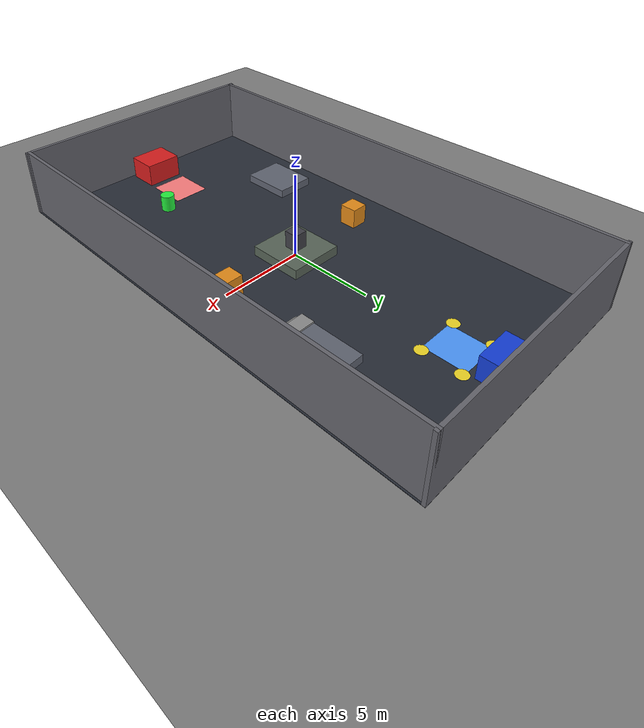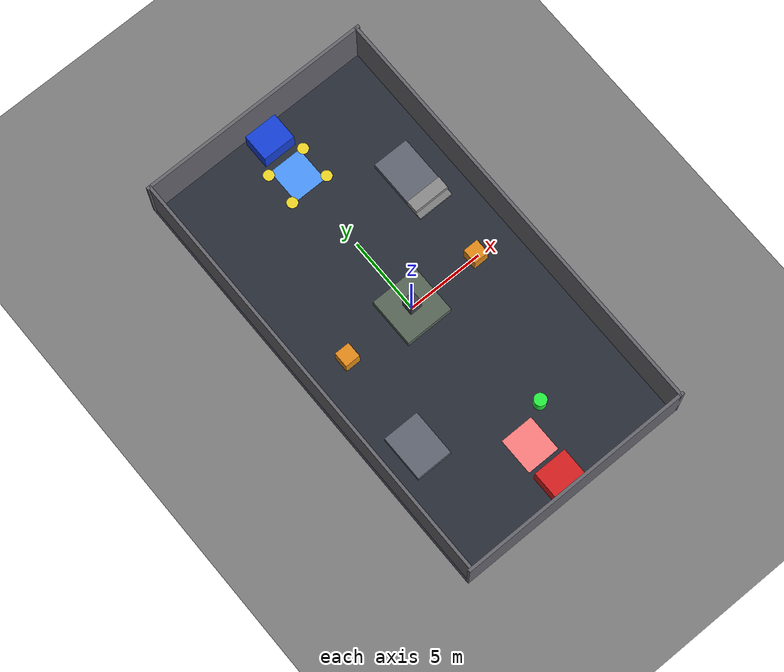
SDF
<?xml version="1.0" encoding="UTF-8"?>
<sdf version="1.9">
  <world name="rm2025_field">
    <physics type="ode">
      <max_step_size>0.004</max_step_size>
      <real_time_factor>1.0</real_time_factor>
      <real_time_update_rate>250</real_time_update_rate>
    </physics>
    <plugin name="gz::sim::systems::Physics" filename="gz-sim-physics-system"/>
    <plugin name="gz::sim::systems::UserCommands" filename="gz-sim-user-commands-system"/>
    <plugin name="gz::sim::systems::SceneBroadcaster" filename="gz-sim-scene-broadcaster-system"/>
    <plugin name="gz::sim::systems::Contact" filename="gz-sim-contact-system"/>
    <plugin name="gz::sim::systems::Imu" filename="gz-sim-imu-system"/>
    <plugin name="gz::sim::systems::AirPressure" filename="gz-sim-air-pressure-system"/>
    <plugin name="gz::sim::systems::ApplyLinkWrench" filename="gz-sim-apply-link-wrench-system"/>
    <plugin name="gz::sim::systems::NavSat" filename="gz-sim-navsat-system"/>
    <plugin name="gz::sim::systems::Sensors" filename="gz-sim-sensors-system">
      <render_engine>ogre2</render_engine>
    </plugin>
    <gui fullscreen="false">
      <plugin filename="MinimalScene" name="3D View">
        <gz-gui>
          <title>3D View</title>
          <property type="bool" key="showTitleBar">false</property>
          <property type="string" key="state">docked</property>
        </gz-gui>
        <engine>ogre2</engine>
        <scene>scene</scene>
        <ambient_light>0.4 0.4 0.4</ambient_light>
        <background_color>0.8 0.8 0.8</background_color>
        <!-- 默认相机：从蓝方基地上空俯瞰全场 -->
        <camera_pose>3 22 14 0 0.55 -1.5707</camera_pose>
        <camera_clip>
          <near>0.25</near>
          <far>25000</far>
        </camera_clip>
      </plugin>
      <plugin filename="EntityContextMenuPlugin" name="Entity context menu">
        <gz-gui>
          <property key="state" type="string">floating</property>
          <property key="width" type="double">5</property>
          <property key="height" type="double">5</property>
          <property key="showTitleBar" type="bool">false</property>
        </gz-gui>
      </plugin>
      <plugin filename="GzSceneManager" name="Scene Manager">
        <gz-gui>
          <property key="resizable" type="bool">false</property>
          <property key="width" type="double">5</property>
          <property key="height" type="double">5</property>
          <property key="state" type="string">floating</property>
          <property key="showTitleBar" type="bool">false</property>
        </gz-gui>
      </plugin>
      <plugin filename="InteractiveViewControl" name="Interactive view control">
        <gz-gui>
          <property key="resizable" type="bool">false</property>
          <property key="width" type="double">5</property>
          <property key="height" type="double">5</property>
          <property key="state" type="string">floating</property>
          <property key="showTitleBar" type="bool">false</property>
        </gz-gui>
      </plugin>
      <plugin filename="CameraTracking" name="Camera Tracking">
        <gz-gui>
          <property key="resizable" type="bool">false</property>
          <property key="width" type="double">5</property>
          <property key="height" type="double">5</property>
          <property key="state" type="string">floating</property>
          <property key="showTitleBar" type="bool">false</property>
        </gz-gui>
      </plugin>
      <plugin filename="MarkerManager" name="Marker manager">
        <gz-gui>
          <property key="resizable" type="bool">false</property>
          <property key="width" type="double">5</property>
          <property key="height" type="double">5</property>
          <property key="state" type="string">floating</property>
          <property key="showTitleBar" type="bool">false</property>
        </gz-gui>
      </plugin>
      <plugin filename="SelectEntities" name="Select Entities">
        <anchors target="Select entities">
          <line own="right" target="right"/>
          <line own="top" target="top"/>
        </anchors>
        <property key="resizable" type="bool">false</property>
        <property key="width" type="double">5</property>
        <property key="height" type="double">5</property>
        <property key="state" type="string">floating</property>
        <property key="showTitleBar" type="bool">false</property>
      </plugin>
      <plugin filename="VisualizationCapabilities" name="Visualization Capabilities">
        <gz-gui>
          <property key="resizable" type="bool">false</property>
          <property key="width" type="double">5</property>
          <property key="height" type="double">5</property>
          <property key="state" type="string">floating</property>
          <property key="showTitleBar" type="bool">false</property>
        </gz-gui>
      </plugin>
      <plugin filename="Spawn" name="Spawn Entities">
        <gz-gui>
          <anchors target="Select entities">
            <line own="right" target="right"/>
            <line own="top" target="top"/>
          </anchors>
          <property key="resizable" type="bool">false</property>
          <property key="width" type="double">5</property>
          <property key="height" type="double">5</property>
          <property key="state" type="string">floating</property>
          <property key="showTitleBar" type="bool">false</property>
        </gz-gui>
      </plugin>
      <plugin name="World control" filename="WorldControl">
        <gz-gui>
          <title>World control</title>
          <property type="bool" key="showTitleBar">0</property>
          <property type="bool" key="resizable">0</property>
          <property type="double" key="height">72</property>
          <property type="double" key="width">121</property>
          <property type="double" key="z">1</property>
          <property type="string" key="state">floating</property>
          <anchors target="3D View">
            <line own="left" target="left"/>
            <line own="bottom" target="bottom"/>
          </anchors>
        </gz-gui>
        <play_pause>1</play_pause>
        <step>1</step>
        <start_paused>1</start_paused>
      </plugin>
      <plugin name="World stats" filename="WorldStats">
        <gz-gui>
          <title>World stats</title>
          <property type="bool" key="showTitleBar">0</property>
          <property type="bool" key="resizable">0</property>
          <property type="double" key="height">110</property>
          <property type="double" key="width">290</property>
          <property type="double" key="z">1</property>
          <property type="string" key="state">floating</property>
          <anchors target="3D View">
            <line own="right" target="right"/>
            <line own="bottom" target="bottom"/>
          </anchors>
        </gz-gui>
        <sim_time>1</sim_time>
        <real_time>1</real_time>
        <real_time_factor>1</real_time_factor>
        <iterations>1</iterations>
      </plugin>
      <plugin name="Entity tree" filename="EntityTree"/>
    </gui>
    <gravity>0 0 -9.8</gravity>
    <magnetic_field>6e-06 2.3e-05 -4.2e-05</magnetic_field>
    <atmosphere type="adiabatic"/>
    <scene>
      <grid>false</grid>
      <ambient>0.4 0.4 0.4 1</ambient>
      <background>0.7 0.7 0.7 1</background>
      <shadows>true</shadows>
    </scene>
    <light name="sunUTC" type="directional">
      <pose>0 0 500 0 -0 0</pose>
      <cast_shadows>true</cast_shadows>
      <intensity>1</intensity>
      <direction>0.001 0.625 -0.78</direction>
      <diffuse>0.904 0.904 0.904 1</diffuse>
      <specular>0.271 0.271 0.271 1</specular>
      <attenuation>
        <range>2000</range>
        <linear>0</linear>
        <constant>1</constant>
        <quadratic>0</quadratic>
      </attenuation>
      <spot>
        <inner_angle>0</inner_angle>
        <outer_angle>0</outer_angle>
        <falloff>0</falloff>
      </spot>
    </light>
    <spherical_coordinates>
      <surface_model>EARTH_WGS84</surface_model>
      <world_frame_orientation>ENU</world_frame_orientation>
      <latitude_deg>47.397971057728974</latitude_deg>
      <longitude_deg> 8.546163739800146</longitude_deg>
      <elevation>0</elevation>
    </spherical_coordinates>

    <!-- ================= 地面 ================= -->
    <model name="ground_plane">
      <static>true</static>
      <link name="link">
        <collision name="collision">
          <geometry>
            <plane>
              <normal>0 0 1</normal>
              <size>1 1</size>
            </plane>
          </geometry>
          <surface>
            <friction>
              <ode/>
            </friction>
            <bounce/>
            <contact/>
          </surface>
        </collision>
        <visual name="visual">
          <geometry>
            <plane>
              <normal>0 0 1</normal>
              <size>100 100</size>
            </plane>
          </geometry>
          <material>
            <ambient>0.5 0.5 0.5 1</ambient>
            <diffuse>0.5 0.5 0.5 1</diffuse>
            <specular>0.5 0.5 0.5 1</specular>
          </material>
        </visual>
        <pose>0 0 0 0 -0 0</pose>
        <inertial>
          <pose>0 0 0 0 -0 0</pose>
          <mass>1</mass>
          <inertia>
            <ixx>1</ixx><ixy>0</ixy><ixz>0</ixz>
            <iyy>1</iyy><iyz>0</iyz><izz>1</izz>
          </inertia>
        </inertial>
        <enable_wind>false</enable_wind>
      </link>
      <pose>0 0 0 0 -0 0</pose>
      <self_collide>false</self_collide>
    </model>

    <!-- 赛场地板 15.6 x 28.6 m（深蓝灰） -->
    <model name="field_floor">
      <static>true</static>
      <pose>0 0 0.01 0 0 0</pose>
      <link name="link">
        <collision name="collision">
          <geometry><box><size>15.6 28.6 0.02</size></box></geometry>
        </collision>
        <visual name="visual">
          <geometry><box><size>15.6 28.6 0.02</size></box></geometry>
          <material>
            <ambient>0.13 0.15 0.19 1</ambient>
            <diffuse>0.16 0.18 0.22 1</diffuse>
          </material>
        </visual>
      </link>
    </model>

    <!-- ================= 四周围挡（4 m 高） ================= -->
    <model name="wall_north">
      <static>true</static>
      <pose>0 14.2 2.0 0 0 0</pose>
      <link name="link">
        <collision name="collision"><geometry><box><size>15.6 0.2 4.0</size></box></geometry></collision>
        <visual name="visual"><geometry><box><size>15.6 0.2 4.0</size></box></geometry>
          <material><ambient>0.35 0.35 0.38 1</ambient><diffuse>0.4 0.4 0.43 1</diffuse></material>
        </visual>
      </link>
    </model>
    <model name="wall_south">
      <static>true</static>
      <pose>0 -14.2 2.0 0 0 0</pose>
      <link name="link">
        <collision name="collision"><geometry><box><size>15.6 0.2 4.0</size></box></geometry></collision>
        <visual name="visual"><geometry><box><size>15.6 0.2 4.0</size></box></geometry>
          <material><ambient>0.35 0.35 0.38 1</ambient><diffuse>0.4 0.4 0.43 1</diffuse></material>
        </visual>
      </link>
    </model>
    <model name="wall_east">
      <static>true</static>
      <pose>7.6 0 2.0 0 0 0</pose>
      <link name="link">
        <collision name="collision"><geometry><box><size>0.2 28.6 4.0</size></box></geometry></collision>
        <visual name="visual"><geometry><box><size>0.2 28.6 4.0</size></box></geometry>
          <material><ambient>0.35 0.35 0.38 1</ambient><diffuse>0.4 0.4 0.43 1</diffuse></material>
        </visual>
      </link>
    </model>
    <model name="wall_west">
      <static>true</static>
      <pose>-7.6 0 2.0 0 0 0</pose>
      <link name="link">
        <collision name="collision"><geometry><box><size>0.2 28.6 4.0</size></box></geometry></collision>
        <visual name="visual"><geometry><box><size>0.2 28.6 4.0</size></box></geometry>
          <material><ambient>0.35 0.35 0.38 1</ambient><diffuse>0.4 0.4 0.43 1</diffuse></material>
        </visual>
      </link>
    </model>

    <!-- ================= 双方基地 ================= -->
    <!-- 蓝方基地（我方，北端 NED x=+13） -->
    <model name="blue_base">
      <static>true</static>
      <pose>0 13.0 0.7 0 0 0</pose>
      <link name="link">
        <collision name="collision"><geometry><box><size>2.2 1.8 1.4</size></box></geometry></collision>
        <visual name="visual"><geometry><box><size>2.2 1.8 1.4</size></box></geometry>
          <material><ambient>0.05 0.18 0.7 1</ambient><diffuse>0.08 0.25 0.85 1</diffuse></material>
        </visual>
      </link>
    </model>
    <!-- 红方基地（敌方，南端 NED x=-13） -->
    <model name="red_base">
      <static>true</static>
      <pose>0 -13.0 0.7 0 0 0</pose>
      <link name="link">
        <collision name="collision"><geometry><box><size>2.2 1.8 1.4</size></box></geometry></collision>
        <visual name="visual"><geometry><box><size>2.2 1.8 1.4</size></box></geometry>
          <material><ambient>0.7 0.08 0.08 1</ambient><diffuse>0.85 0.12 0.12 1</diffuse></material>
        </visual>
      </link>
    </model>

    <!-- ================= 基地启动区地贴 ================= -->
    <!-- 蓝方启动区：NED 中心 (10.5, 0)，2.4(x 长) x 2.2(y 宽)，无人机出生在其四周 -->
    <model name="blue_startup_zone">
      <static>true</static>
      <pose>0 10.5 0.032 0 0 0</pose>
      <link name="link">
        <visual name="visual"><geometry><box><size>2.2 2.4 0.004</size></box></geometry>
          <material><ambient>0.25 0.5 0.95 1</ambient><diffuse>0.3 0.6 1.0 1</diffuse></material>
        </visual>
      </link>
    </model>
    <model name="red_startup_zone">
      <static>true</static>
      <pose>0 -10.5 0.032 0 0 0</pose>
      <link name="link">
        <visual name="visual"><geometry><box><size>2.2 2.4 0.004</size></box></geometry>
          <material><ambient>0.95 0.4 0.4 1</ambient><diffuse>1.0 0.5 0.5 1</diffuse></material>
        </visual>
      </link>
    </model>

    <!-- ================= 停机坪（4 个出生点，黄色圆垫） ================= -->
    <!-- pad_i 对应第 i 台无人机出生点（ENU 坐标，与 start_sim_4uav.sh 一致） -->
    <model name="pad_1">
      <static>true</static>
      <pose>1.3 9.4 0.035 0 0 0</pose>
      <link name="link">
        <visual name="visual"><geometry><cylinder><radius>0.35</radius><length>0.01</length></cylinder></geometry>
          <material><ambient>0.85 0.75 0.1 1</ambient><diffuse>0.95 0.85 0.15 1</diffuse></material>
        </visual>
      </link>
    </model>
    <model name="pad_2">
      <static>true</static>
      <pose>-1.3 9.4 0.035 0 0 0</pose>
      <link name="link">
        <visual name="visual"><geometry><cylinder><radius>0.35</radius><length>0.01</length></cylinder></geometry>
          <material><ambient>0.85 0.75 0.1 1</ambient><diffuse>0.95 0.85 0.15 1</diffuse></material>
        </visual>
      </link>
    </model>
    <model name="pad_3">
      <static>true</static>
      <pose>1.3 11.6 0.035 0 0 0</pose>
      <link name="link">
        <visual name="visual"><geometry><cylinder><radius>0.35</radius><length>0.01</length></cylinder></geometry>
          <material><ambient>0.85 0.75 0.1 1</ambient><diffuse>0.95 0.85 0.15 1</diffuse></material>
        </visual>
      </link>
    </model>
    <model name="pad_4">
      <static>true</static>
      <pose>-1.3 11.6 0.035 0 0 0</pose>
      <link name="link">
        <visual name="visual"><geometry><cylinder><radius>0.35</radius><length>0.01</length></cylinder></geometry>
          <material><ambient>0.85 0.75 0.1 1</ambient><diffuse>0.95 0.85 0.15 1</diffuse></material>
        </visual>
      </link>
    </model>

    <!-- ================= 场地障碍（简化） ================= -->
    <!-- 前哨站（中场两侧，1.2 m 高） -->
    <model name="outpost_east">
      <static>true</static>
      <pose>4.8 0 0.6 0 0 0</pose>
      <link name="link">
        <collision name="collision"><geometry><box><size>1.0 1.0 1.2</size></box></geometry></collision>
        <visual name="visual"><geometry><box><size>1.0 1.0 1.2</size></box></geometry>
          <material><ambient>0.75 0.45 0.08 1</ambient><diffuse>0.9 0.55 0.1 1</diffuse></material>
        </visual>
      </link>
    </model>
    <model name="outpost_west">
      <static>true</static>
      <pose>-4.8 0 0.6 0 0 0</pose>
      <link name="link">
        <collision name="collision"><geometry><box><size>1.0 1.0 1.2</size></box></geometry></collision>
        <visual name="visual"><geometry><box><size>1.0 1.0 1.2</size></box></geometry>
          <material><ambient>0.75 0.45 0.08 1</ambient><diffuse>0.9 0.55 0.1 1</diffuse></material>
        </visual>
      </link>
    </model>

    <!-- 中央资源岛（0.6 m 高台） -->
    <model name="center_island">
      <static>true</static>
      <pose>0 0 0.3 0 0 0</pose>
      <link name="link">
        <collision name="collision"><geometry><box><size>3.2 3.2 0.6</size></box></geometry></collision>
        <visual name="visual"><geometry><box><size>3.2 3.2 0.6</size></box></geometry>
          <material><ambient>0.28 0.33 0.28 1</ambient><diffuse>0.35 0.4 0.35 1</diffuse></material>
        </visual>
      </link>
    </model>
    <!-- 能量机关架（简化立柱，立于资源岛上，顶面 1.6 m，低于最低飞行层 2.0 m） -->
    <model name="rune_tower">
      <static>true</static>
      <pose>0 0 1.1 0 0 0</pose>
      <link name="link">
        <collision name="collision"><geometry><box><size>0.8 0.8 1.0</size></box></geometry></collision>
        <visual name="visual"><geometry><box><size>0.8 0.8 1.0</size></box></geometry>
          <material><ambient>0.2 0.2 0.22 1</ambient><diffuse>0.25 0.25 0.28 1</diffuse></material>
        </visual>
      </link>
    </model>

    <!-- 高地平台（0.5 m 高，蓝方东侧 / 红方西侧） -->
    <model name="highland_blue">
      <static>true</static>
      <pose>5.0 6.5 0.25 0 0 0</pose>
      <link name="link">
        <collision name="collision"><geometry><box><size>2.4 3.0 0.5</size></box></geometry></collision>
        <visual name="visual"><geometry><box><size>2.4 3.0 0.5</size></box></geometry>
          <material><ambient>0.3 0.32 0.36 1</ambient><diffuse>0.38 0.4 0.45 1</diffuse></material>
        </visual>
      </link>
    </model>
    <model name="highland_red">
      <static>true</static>
      <pose>-5.0 -6.5 0.25 0 0 0</pose>
      <link name="link">
        <collision name="collision"><geometry><box><size>2.4 3.0 0.5</size></box></geometry></collision>
        <visual name="visual"><geometry><box><size>2.4 3.0 0.5</size></box></geometry>
          <material><ambient>0.3 0.32 0.36 1</ambient><diffuse>0.38 0.4 0.45 1</diffuse></material>
        </visual>
      </link>
    </model>

    <!-- 二级台阶（2025 赛季新增地形，两级各 0.2 m，靠蓝方高地） -->
    <model name="steps_blue_1">
      <static>true</static>
      <pose>5.0 4.2 0.1 0 0 0</pose>
      <link name="link">
        <collision name="collision"><geometry><box><size>2.4 0.8 0.2</size></box></geometry></collision>
        <visual name="visual"><geometry><box><size>2.4 0.8 0.2</size></box></geometry>
          <material><ambient>0.4 0.4 0.4 1</ambient><diffuse>0.5 0.5 0.5 1</diffuse></material>
        </visual>
      </link>
    </model>
    <model name="steps_blue_2">
      <static>true</static>
      <pose>5.0 4.6 0.3 0 0 0</pose>
      <link name="link">
        <collision name="collision"><geometry><box><size>2.4 0.8 0.6</size></box></geometry></collision>
        <visual name="visual"><geometry><box><size>2.4 0.8 0.6</size></box></geometry>
          <material><ambient>0.45 0.45 0.45 1</ambient><diffuse>0.55 0.55 0.55 1</diffuse></material>
        </visual>
      </link>
    </model>

    <!-- 搜索目标标记（亮绿色立柱，NED (-9, 2, 0)，与 params.yaml 的
         target_world 对应；无人机汇聚时可在画面中直观看到） -->
    <model name="target_marker">
      <static>true</static>
      <pose>2.0 -9.0 0.5 0 0 0</pose>
      <link name="link">
        <collision name="collision"><geometry><cylinder><radius>0.4</radius><length>1.0</length></cylinder></geometry></collision>
        <visual name="visual"><geometry><cylinder><radius>0.4</radius><length>1.0</length></cylinder></geometry>
          <material>
            <ambient>0.1 0.8 0.2 1</ambient>
            <diffuse>0.15 0.95 0.25 1</diffuse>
            <emissive>0.1 0.6 0.15 1</emissive>
          </material>
        </visual>
      </link>
    </model>

  </world>
</sdf>
